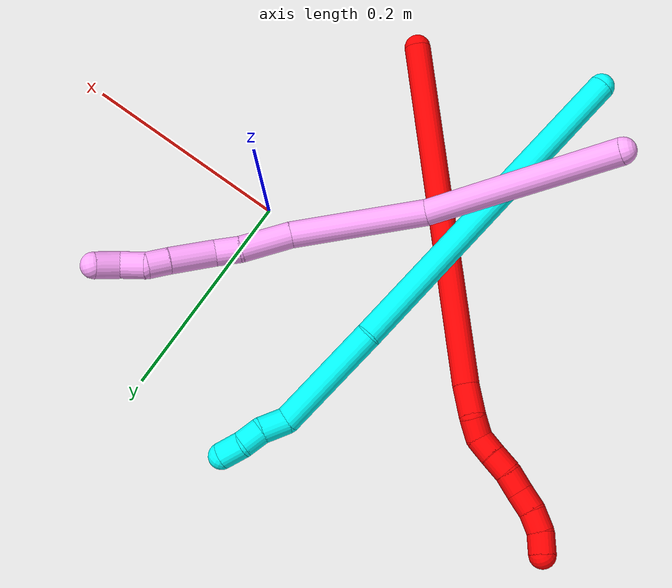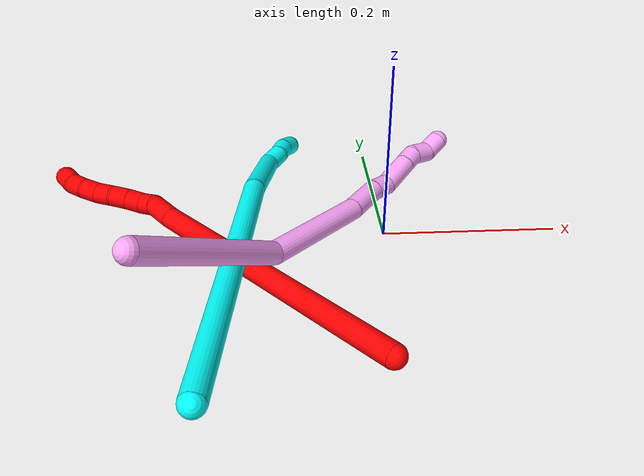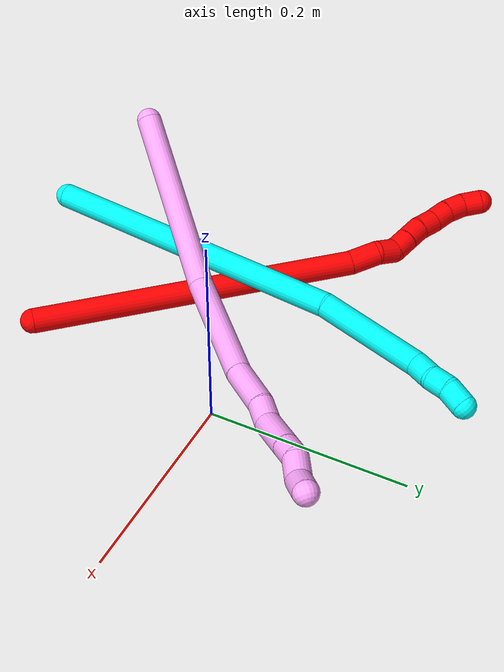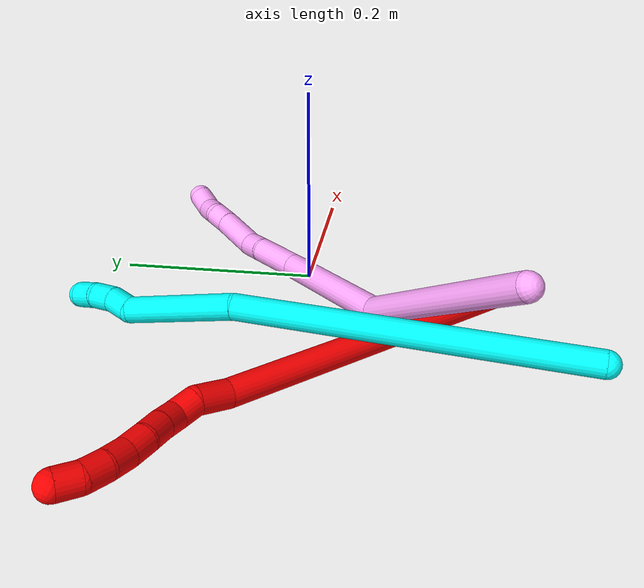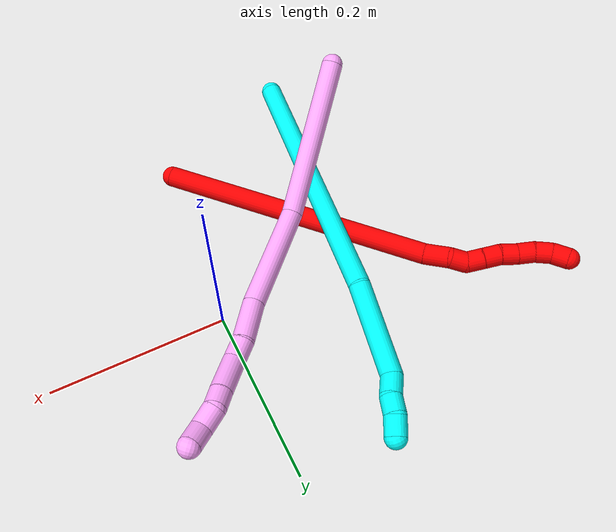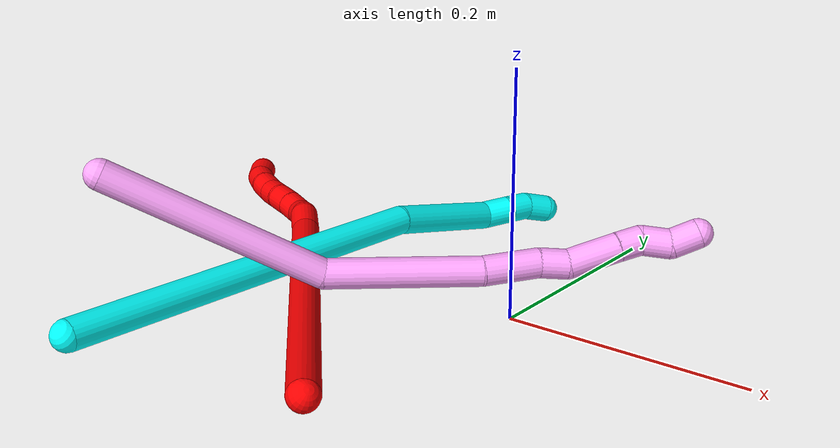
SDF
<sdf version="1.7">
 <world name="default">
  <model name="2">
   <static>0</static>
   <link name="2">
    <collision name="collision-cylinder-e_1_1_4">
     <pose>-0.106096 0.058304 0.111728 -0.480962 -0.699748 0.178484</pose>
     <geometry><cylinder><radius>0.0125</radius><length>0.329477</length></cylinder></geometry>
     <surface>
      <friction><ode><mu>1.16</mu><mu2>1.16</mu2><slip1>0</slip1><slip2>0</slip2></ode></friction>
      <contact><ode><kp>1e+06</kp><kd>1</kd><max_vel>0</max_vel><min_depth>0.001</min_depth></ode></contact>
     </surface>
    </collision>
    <visual name="visual-cylinder-e_1_1_4">
     <pose>-0.106096 0.058304 0.111728 -0.480962 -0.699748 0.178484</pose>
     <geometry><cylinder><radius>0.0125</radius><length>0.329477</length></cylinder></geometry>
     <material><ambient>1 0 0 1</ambient></material>
    </visual>
    <collision name="collision-cylinder-e_2_4_5">
     <pose>-0.222048 0.124233 0.231872 -0.736162 -0.714769 0.286057</pose>
     <geometry><cylinder><radius>0.0125</radius><length>0.030076</length></cylinder></geometry>
     <surface>
      <friction><ode><mu>1.16</mu><mu2>1.16</mu2><slip1>0</slip1><slip2>0</slip2></ode></friction>
      <contact><ode><kp>1e+06</kp><kd>1</kd><max_vel>0</max_vel><min_depth>0.001</min_depth></ode></contact>
     </surface>
    </collision>
    <visual name="visual-cylinder-e_2_4_5">
     <pose>-0.222048 0.124233 0.231872 -0.736162 -0.714769 0.286057</pose>
     <geometry><cylinder><radius>0.0125</radius><length>0.030076</length></cylinder></geometry>
     <material><ambient>1 0 0 1</ambient></material>
    </visual>
    <collision name="collision-cylinder-e_3_5_6">
     <pose>-0.236366 0.134947 0.248896 -0.344458 -0.453863 0.080291</pose>
     <geometry><cylinder><radius>0.0125</radius><length>0.020349</length></cylinder></geometry>
     <surface>
      <friction><ode><mu>1.16</mu><mu2>1.16</mu2><slip1>0</slip1><slip2>0</slip2></ode></friction>
      <contact><ode><kp>1e+06</kp><kd>1</kd><max_vel>0</max_vel><min_depth>0.001</min_depth></ode></contact>
     </surface>
    </collision>
    <visual name="visual-cylinder-e_3_5_6">
     <pose>-0.236366 0.134947 0.248896 -0.344458 -0.453863 0.080291</pose>
     <geometry><cylinder><radius>0.0125</radius><length>0.020349</length></cylinder></geometry>
     <material><ambient>1 0 0 1</ambient></material>
    </visual>
    <collision name="collision-cylinder-e_4_6_7">
     <pose>-0.243364 0.145363 0.263833 -0.858365 -0.256271 0.117787</pose>
     <geometry><cylinder><radius>0.0125</radius><length>0.020021</length></cylinder></geometry>
     <surface>
      <friction><ode><mu>1.16</mu><mu2>1.16</mu2><slip1>0</slip1><slip2>0</slip2></ode></friction>
      <contact><ode><kp>1e+06</kp><kd>1</kd><max_vel>0</max_vel><min_depth>0.001</min_depth></ode></contact>
     </surface>
    </collision>
    <visual name="visual-cylinder-e_4_6_7">
     <pose>-0.243364 0.145363 0.263833 -0.858365 -0.256271 0.117787</pose>
     <geometry><cylinder><radius>0.0125</radius><length>0.020021</length></cylinder></geometry>
     <material><ambient>1 0 0 1</ambient></material>
    </visual>
    <collision name="collision-cylinder-e_5_7_8">
     <pose>-0.247934 0.159846 0.276884 -0.816632 -0.204169 0.08858</pose>
     <geometry><cylinder><radius>0.0125</radius><length>0.020049</length></cylinder></geometry>
     <surface>
      <friction><ode><mu>1.16</mu><mu2>1.16</mu2><slip1>0</slip1><slip2>0</slip2></ode></friction>
      <contact><ode><kp>1e+06</kp><kd>1</kd><max_vel>0</max_vel><min_depth>0.001</min_depth></ode></contact>
     </surface>
    </collision>
    <visual name="visual-cylinder-e_5_7_8">
     <pose>-0.247934 0.159846 0.276884 -0.816632 -0.204169 0.08858</pose>
     <geometry><cylinder><radius>0.0125</radius><length>0.020049</length></cylinder></geometry>
     <material><ambient>1 0 0 1</ambient></material>
    </visual>
    <collision name="collision-cylinder-e_6_8_9">
     <pose>-0.253025 0.17264 0.291282 -0.633604 -0.310664 0.102586</pose>
     <geometry><cylinder><radius>0.0125</radius><length>0.02001</length></cylinder></geometry>
     <surface>
      <friction><ode><mu>1.16</mu><mu2>1.16</mu2><slip1>0</slip1><slip2>0</slip2></ode></friction>
      <contact><ode><kp>1e+06</kp><kd>1</kd><max_vel>0</max_vel><min_depth>0.001</min_depth></ode></contact>
     </surface>
    </collision>
    <visual name="visual-cylinder-e_6_8_9">
     <pose>-0.253025 0.17264 0.291282 -0.633604 -0.310664 0.102586</pose>
     <geometry><cylinder><radius>0.0125</radius><length>0.02001</length></cylinder></geometry>
     <material><ambient>1 0 0 1</ambient></material>
    </visual>
    <collision name="collision-cylinder-e_7_9_10">
     <pose>-0.259458 0.184968 0.305593 -0.789434 -0.344067 0.14451</pose>
     <geometry><cylinder><radius>0.0125</radius><length>0.020011</length></cylinder></geometry>
     <surface>
      <friction><ode><mu>1.16</mu><mu2>1.16</mu2><slip1>0</slip1><slip2>0</slip2></ode></friction>
      <contact><ode><kp>1e+06</kp><kd>1</kd><max_vel>0</max_vel><min_depth>0.001</min_depth></ode></contact>
     </surface>
    </collision>
    <visual name="visual-cylinder-e_7_9_10">
     <pose>-0.259458 0.184968 0.305593 -0.789434 -0.344067 0.14451</pose>
     <geometry><cylinder><radius>0.0125</radius><length>0.020011</length></cylinder></geometry>
     <material><ambient>1 0 0 1</ambient></material>
    </visual>
    <collision name="collision-cylinder-e_8_10_11">
     <pose>-0.267691 0.196965 0.319172 -0.652744 -0.507088 0.174965</pose>
     <geometry><cylinder><radius>0.0125</radius><length>0.020004</length></cylinder></geometry>
     <surface>
      <friction><ode><mu>1.16</mu><mu2>1.16</mu2><slip1>0</slip1><slip2>0</slip2></ode></friction>
      <contact><ode><kp>1e+06</kp><kd>1</kd><max_vel>0</max_vel><min_depth>0.001</min_depth></ode></contact>
     </surface>
    </collision>
    <visual name="visual-cylinder-e_8_10_11">
     <pose>-0.267691 0.196965 0.319172 -0.652744 -0.507088 0.174965</pose>
     <geometry><cylinder><radius>0.0125</radius><length>0.020004</length></cylinder></geometry>
     <material><ambient>1 0 0 1</ambient></material>
    </visual>
    <collision name="collision-cylinder-e_9_11_2">
     <pose>-0.279831 0.205835 0.331975 -0.546119 -0.815727 0.240848</pose>
     <geometry><cylinder><radius>0.0125</radius><length>0.020003</length></cylinder></geometry>
     <surface>
      <friction><ode><mu>1.16</mu><mu2>1.16</mu2><slip1>0</slip1><slip2>0</slip2></ode></friction>
      <contact><ode><kp>1e+06</kp><kd>1</kd><max_vel>0</max_vel><min_depth>0.001</min_depth></ode></contact>
     </surface>
    </collision>
    <visual name="visual-cylinder-e_9_11_2">
     <pose>-0.279831 0.205835 0.331975 -0.546119 -0.815727 0.240848</pose>
     <geometry><cylinder><radius>0.0125</radius><length>0.020003</length></cylinder></geometry>
     <material><ambient>1 0 0 1</ambient></material>
    </visual>
    <collision name="collision-sphere-2">
     <pose>-0.287115 0.209395 0.337833 0 -0 0</pose>
     <geometry><sphere><radius>0.0125</radius></sphere></geometry>
     <surface>
      <friction><ode><mu>1.16</mu><mu2>1.16</mu2><slip1>0</slip1><slip2>0</slip2></ode></friction>
      <contact><ode><kp>1e+06</kp><kd>1</kd><max_vel>0</max_vel><min_depth>0.001</min_depth></ode></contact>
     </surface>
    </collision>
    <visual name="visual-sphere-2">
     <pose>-0.287115 0.209395 0.337833 0 -0 0</pose>
     <geometry><sphere><radius>0.0125</radius></sphere></geometry>
     <material><ambient>1 0 0 1</ambient></material>
    </visual>
    <collision name="collision-sphere-11">
     <pose>-0.272548 0.202275 0.326118 0 -0 0</pose>
     <geometry><sphere><radius>0.0125</radius></sphere></geometry>
     <surface>
      <friction><ode><mu>1.16</mu><mu2>1.16</mu2><slip1>0</slip1><slip2>0</slip2></ode></friction>
      <contact><ode><kp>1e+06</kp><kd>1</kd><max_vel>0</max_vel><min_depth>0.001</min_depth></ode></contact>
     </surface>
    </collision>
    <visual name="visual-sphere-11">
     <pose>-0.272548 0.202275 0.326118 0 -0 0</pose>
     <geometry><sphere><radius>0.0125</radius></sphere></geometry>
     <material><ambient>1 0 0 1</ambient></material>
    </visual>
    <collision name="collision-sphere-10">
     <pose>-0.262833 0.191655 0.312226 0 -0 0</pose>
     <geometry><sphere><radius>0.0125</radius></sphere></geometry>
     <surface>
      <friction><ode><mu>1.16</mu><mu2>1.16</mu2><slip1>0</slip1><slip2>0</slip2></ode></friction>
      <contact><ode><kp>1e+06</kp><kd>1</kd><max_vel>0</max_vel><min_depth>0.001</min_depth></ode></contact>
     </surface>
    </collision>
    <visual name="visual-sphere-10">
     <pose>-0.262833 0.191655 0.312226 0 -0 0</pose>
     <geometry><sphere><radius>0.0125</radius></sphere></geometry>
     <material><ambient>1 0 0 1</ambient></material>
    </visual>
    <collision name="collision-sphere-9">
     <pose>-0.256083 0.17828 0.29896 0 -0 0</pose>
     <geometry><sphere><radius>0.0125</radius></sphere></geometry>
     <surface>
      <friction><ode><mu>1.16</mu><mu2>1.16</mu2><slip1>0</slip1><slip2>0</slip2></ode></friction>
      <contact><ode><kp>1e+06</kp><kd>1</kd><max_vel>0</max_vel><min_depth>0.001</min_depth></ode></contact>
     </surface>
    </collision>
    <visual name="visual-sphere-9">
     <pose>-0.256083 0.17828 0.29896 0 -0 0</pose>
     <geometry><sphere><radius>0.0125</radius></sphere></geometry>
     <material><ambient>1 0 0 1</ambient></material>
    </visual>
    <collision name="collision-sphere-4">
     <pose>-0.212191 0.116607 0.223456 0 -0 0</pose>
     <geometry><sphere><radius>0.0125</radius></sphere></geometry>
     <surface>
      <friction><ode><mu>1.16</mu><mu2>1.16</mu2><slip1>0</slip1><slip2>0</slip2></ode></friction>
      <contact><ode><kp>1e+06</kp><kd>1</kd><max_vel>0</max_vel><min_depth>0.001</min_depth></ode></contact>
     </surface>
    </collision>
    <visual name="visual-sphere-4">
     <pose>-0.212191 0.116607 0.223456 0 -0 0</pose>
     <geometry><sphere><radius>0.0125</radius></sphere></geometry>
     <material><ambient>1 0 0 1</ambient></material>
    </visual>
    <collision name="collision-sphere-1">
     <geometry><sphere><radius>0.0125</radius></sphere></geometry>
     <surface>
      <friction><ode><mu>1.16</mu><mu2>1.16</mu2><slip1>0</slip1><slip2>0</slip2></ode></friction>
      <contact><ode><kp>1e+06</kp><kd>1</kd><max_vel>0</max_vel><min_depth>0.001</min_depth></ode></contact>
     </surface>
    </collision>
    <visual name="visual-sphere-1">
     <geometry><sphere><radius>0.0125</radius></sphere></geometry>
     <material><ambient>1 0 0 1</ambient></material>
    </visual>
    <collision name="collision-sphere-8">
     <pose>-0.249966 0.167 0.283605 0 -0 0</pose>
     <geometry><sphere><radius>0.0125</radius></sphere></geometry>
     <surface>
      <friction><ode><mu>1.16</mu><mu2>1.16</mu2><slip1>0</slip1><slip2>0</slip2></ode></friction>
      <contact><ode><kp>1e+06</kp><kd>1</kd><max_vel>0</max_vel><min_depth>0.001</min_depth></ode></contact>
     </surface>
    </collision>
    <visual name="visual-sphere-8">
     <pose>-0.249966 0.167 0.283605 0 -0 0</pose>
     <geometry><sphere><radius>0.0125</radius></sphere></geometry>
     <material><ambient>1 0 0 1</ambient></material>
    </visual>
    <collision name="collision-sphere-5">
     <pose>-0.231905 0.131859 0.240289 0 -0 0</pose>
     <geometry><sphere><radius>0.0125</radius></sphere></geometry>
     <surface>
      <friction><ode><mu>1.16</mu><mu2>1.16</mu2><slip1>0</slip1><slip2>0</slip2></ode></friction>
      <contact><ode><kp>1e+06</kp><kd>1</kd><max_vel>0</max_vel><min_depth>0.001</min_depth></ode></contact>
     </surface>
    </collision>
    <visual name="visual-sphere-5">
     <pose>-0.231905 0.131859 0.240289 0 -0 0</pose>
     <geometry><sphere><radius>0.0125</radius></sphere></geometry>
     <material><ambient>1 0 0 1</ambient></material>
    </visual>
    <collision name="collision-sphere-6">
     <pose>-0.240827 0.138035 0.257503 0 -0 0</pose>
     <geometry><sphere><radius>0.0125</radius></sphere></geometry>
     <surface>
      <friction><ode><mu>1.16</mu><mu2>1.16</mu2><slip1>0</slip1><slip2>0</slip2></ode></friction>
      <contact><ode><kp>1e+06</kp><kd>1</kd><max_vel>0</max_vel><min_depth>0.001</min_depth></ode></contact>
     </surface>
    </collision>
    <visual name="visual-sphere-6">
     <pose>-0.240827 0.138035 0.257503 0 -0 0</pose>
     <geometry><sphere><radius>0.0125</radius></sphere></geometry>
     <material><ambient>1 0 0 1</ambient></material>
    </visual>
    <collision name="collision-sphere-7">
     <pose>-0.245901 0.152691 0.270163 0 -0 0</pose>
     <geometry><sphere><radius>0.0125</radius></sphere></geometry>
     <surface>
      <friction><ode><mu>1.16</mu><mu2>1.16</mu2><slip1>0</slip1><slip2>0</slip2></ode></friction>
      <contact><ode><kp>1e+06</kp><kd>1</kd><max_vel>0</max_vel><min_depth>0.001</min_depth></ode></contact>
     </surface>
    </collision>
    <visual name="visual-sphere-7">
     <pose>-0.245901 0.152691 0.270163 0 -0 0</pose>
     <geometry><sphere><radius>0.0125</radius></sphere></geometry>
     <material><ambient>1 0 0 1</ambient></material>
    </visual>
    <inertial>
     <pose>-0.15499 0.094041 0.169306 0 -0 0</pose>
     <mass>0.5</mass>
     <inertia>
      <ixx>0.002651</ixx>
      <ixy>0</ixy>
      <ixz>0</ixz>
      <iyy>0.003206</iyy>
      <iyz>0</iyz>
      <izz>0.000894</izz>
     </inertia>
    </inertial>
   </link>
   <pose>-0.022433 -0.212482 0.011498 2.32735 0.312604 -1.65216</pose>
  </model>
  <model name="3">
   <static>0</static>
   <link name="3">
    <collision name="collision-cylinder-e_1_1_4">
     <pose>0.027266 0.113089 -0.112978 -2.3557 0.168945 -0.403013</pose>
     <geometry><cylinder><radius>0.0125</radius><length>0.324324</length></cylinder></geometry>
     <surface>
      <friction><ode><mu>1.16</mu><mu2>1.16</mu2><slip1>0</slip1><slip2>0</slip2></ode></friction>
      <contact><ode><kp>1e+06</kp><kd>1</kd><max_vel>0</max_vel><min_depth>0.001</min_depth></ode></contact>
     </surface>
    </collision>
    <visual name="visual-cylinder-e_1_1_4">
     <pose>0.027266 0.113089 -0.112978 -2.3557 0.168945 -0.403013</pose>
     <geometry><cylinder><radius>0.0125</radius><length>0.324324</length></cylinder></geometry>
     <material><ambient>0.003922 1 0.996078 1</ambient></material>
    </visual>
    <collision name="collision-cylinder-e_2_4_5">
     <pose>0.065338 0.254726 -0.270189 -2.56844 0.202434 -0.663805</pose>
     <geometry><cylinder><radius>0.0125</radius><length>0.107486</length></cylinder></geometry>
     <surface>
      <friction><ode><mu>1.16</mu><mu2>1.16</mu2><slip1>0</slip1><slip2>0</slip2></ode></friction>
      <contact><ode><kp>1e+06</kp><kd>1</kd><max_vel>0</max_vel><min_depth>0.001</min_depth></ode></contact>
     </surface>
    </collision>
    <visual name="visual-cylinder-e_2_4_5">
     <pose>0.065338 0.254726 -0.270189 -2.56844 0.202434 -0.663805</pose>
     <geometry><cylinder><radius>0.0125</radius><length>0.107486</length></cylinder></geometry>
     <material><ambient>0.003922 1 0.996078 1</ambient></material>
    </visual>
    <collision name="collision-cylinder-e_3_5_6">
     <pose>0.083177 0.291511 -0.320659 -2.21902 0.597701 -1.10971</pose>
     <geometry><cylinder><radius>0.0125</radius><length>0.024997</length></cylinder></geometry>
     <surface>
      <friction><ode><mu>1.16</mu><mu2>1.16</mu2><slip1>0</slip1><slip2>0</slip2></ode></friction>
      <contact><ode><kp>1e+06</kp><kd>1</kd><max_vel>0</max_vel><min_depth>0.001</min_depth></ode></contact>
     </surface>
    </collision>
    <visual name="visual-cylinder-e_3_5_6">
     <pose>0.083177 0.291511 -0.320659 -2.21902 0.597701 -1.10971</pose>
     <geometry><cylinder><radius>0.0125</radius><length>0.024997</length></cylinder></geometry>
     <material><ambient>0.003922 1 0.996078 1</ambient></material>
    </visual>
    <collision name="collision-cylinder-e_4_6_7">
     <pose>0.093706 0.306474 -0.333925 -2.37806 0.344957 -0.818834</pose>
     <geometry><cylinder><radius>0.0125</radius><length>0.020675</length></cylinder></geometry>
     <surface>
      <friction><ode><mu>1.16</mu><mu2>1.16</mu2><slip1>0</slip1><slip2>0</slip2></ode></friction>
      <contact><ode><kp>1e+06</kp><kd>1</kd><max_vel>0</max_vel><min_depth>0.001</min_depth></ode></contact>
     </surface>
    </collision>
    <visual name="visual-cylinder-e_4_6_7">
     <pose>0.093706 0.306474 -0.333925 -2.37806 0.344957 -0.818834</pose>
     <geometry><cylinder><radius>0.0125</radius><length>0.020675</length></cylinder></geometry>
     <material><ambient>0.003922 1 0.996078 1</ambient></material>
    </visual>
    <collision name="collision-cylinder-e_5_7_2">
     <pose>0.102662 0.317897 -0.349607 -2.64438 0.506383 -1.58987</pose>
     <geometry><cylinder><radius>0.0125</radius><length>0.022518</length></cylinder></geometry>
     <surface>
      <friction><ode><mu>1.16</mu><mu2>1.16</mu2><slip1>0</slip1><slip2>0</slip2></ode></friction>
      <contact><ode><kp>1e+06</kp><kd>1</kd><max_vel>0</max_vel><min_depth>0.001</min_depth></ode></contact>
     </surface>
    </collision>
    <visual name="visual-cylinder-e_5_7_2">
     <pose>0.102662 0.317897 -0.349607 -2.64438 0.506383 -1.58987</pose>
     <geometry><cylinder><radius>0.0125</radius><length>0.022518</length></cylinder></geometry>
     <material><ambient>0.003922 1 0.996078 1</ambient></material>
    </visual>
    <collision name="collision-sphere-2">
     <pose>0.108123 0.322593 -0.358261 0 -0 0</pose>
     <geometry><sphere><radius>0.0125</radius></sphere></geometry>
     <surface>
      <friction><ode><mu>1.16</mu><mu2>1.16</mu2><slip1>0</slip1><slip2>0</slip2></ode></friction>
      <contact><ode><kp>1e+06</kp><kd>1</kd><max_vel>0</max_vel><min_depth>0.001</min_depth></ode></contact>
     </surface>
    </collision>
    <visual name="visual-sphere-2">
     <pose>0.108123 0.322593 -0.358261 0 -0 0</pose>
     <geometry><sphere><radius>0.0125</radius></sphere></geometry>
     <material><ambient>0.003922 1 0.996078 1</ambient></material>
    </visual>
    <collision name="collision-sphere-7">
     <pose>0.097201 0.313201 -0.340953 0 -0 0</pose>
     <geometry><sphere><radius>0.0125</radius></sphere></geometry>
     <surface>
      <friction><ode><mu>1.16</mu><mu2>1.16</mu2><slip1>0</slip1><slip2>0</slip2></ode></friction>
      <contact><ode><kp>1e+06</kp><kd>1</kd><max_vel>0</max_vel><min_depth>0.001</min_depth></ode></contact>
     </surface>
    </collision>
    <visual name="visual-sphere-7">
     <pose>0.097201 0.313201 -0.340953 0 -0 0</pose>
     <geometry><sphere><radius>0.0125</radius></sphere></geometry>
     <material><ambient>0.003922 1 0.996078 1</ambient></material>
    </visual>
    <collision name="collision-sphere-6">
     <pose>0.09021 0.299747 -0.326897 0 -0 0</pose>
     <geometry><sphere><radius>0.0125</radius></sphere></geometry>
     <surface>
      <friction><ode><mu>1.16</mu><mu2>1.16</mu2><slip1>0</slip1><slip2>0</slip2></ode></friction>
      <contact><ode><kp>1e+06</kp><kd>1</kd><max_vel>0</max_vel><min_depth>0.001</min_depth></ode></contact>
     </surface>
    </collision>
    <visual name="visual-sphere-6">
     <pose>0.09021 0.299747 -0.326897 0 -0 0</pose>
     <geometry><sphere><radius>0.0125</radius></sphere></geometry>
     <material><ambient>0.003922 1 0.996078 1</ambient></material>
    </visual>
    <collision name="collision-sphere-5">
     <pose>0.076143 0.283274 -0.314421 0 -0 0</pose>
     <geometry><sphere><radius>0.0125</radius></sphere></geometry>
     <surface>
      <friction><ode><mu>1.16</mu><mu2>1.16</mu2><slip1>0</slip1><slip2>0</slip2></ode></friction>
      <contact><ode><kp>1e+06</kp><kd>1</kd><max_vel>0</max_vel><min_depth>0.001</min_depth></ode></contact>
     </surface>
    </collision>
    <visual name="visual-sphere-5">
     <pose>0.076143 0.283274 -0.314421 0 -0 0</pose>
     <geometry><sphere><radius>0.0125</radius></sphere></geometry>
     <material><ambient>0.003922 1 0.996078 1</ambient></material>
    </visual>
    <collision name="collision-sphere-1">
     <geometry><sphere><radius>0.0125</radius></sphere></geometry>
     <surface>
      <friction><ode><mu>1.16</mu><mu2>1.16</mu2><slip1>0</slip1><slip2>0</slip2></ode></friction>
      <contact><ode><kp>1e+06</kp><kd>1</kd><max_vel>0</max_vel><min_depth>0.001</min_depth></ode></contact>
     </surface>
    </collision>
    <visual name="visual-sphere-1">
     <geometry><sphere><radius>0.0125</radius></sphere></geometry>
     <material><ambient>0.003922 1 0.996078 1</ambient></material>
    </visual>
    <collision name="collision-sphere-4">
     <pose>0.054532 0.226177 -0.225956 0 -0 0</pose>
     <geometry><sphere><radius>0.0125</radius></sphere></geometry>
     <surface>
      <friction><ode><mu>1.16</mu><mu2>1.16</mu2><slip1>0</slip1><slip2>0</slip2></ode></friction>
      <contact><ode><kp>1e+06</kp><kd>1</kd><max_vel>0</max_vel><min_depth>0.001</min_depth></ode></contact>
     </surface>
    </collision>
    <visual name="visual-sphere-4">
     <pose>0.054532 0.226177 -0.225956 0 -0 0</pose>
     <geometry><sphere><radius>0.0125</radius></sphere></geometry>
     <material><ambient>0.003922 1 0.996078 1</ambient></material>
    </visual>
    <inertial>
     <pose>0.044389 0.169677 -0.17695 0 -0 0</pose>
     <mass>0.5</mass>
     <inertia>
      <ixx>0.001509</ixx>
      <ixy>0</ixy>
      <ixz>0</ixz>
      <iyy>-0.002935</iyy>
      <iyz>0</iyz>
      <izz>-0.002584</izz>
     </inertia>
    </inertial>
   </link>
   <pose>-0.189028 -0.274714 0.03049 0.815892 0.043517 0.043688</pose>
  </model>
  <model name="4">
   <static>0</static>
   <link name="4">
    <collision name="collision-cylinder-e_1_1_4">
     <pose>-0.002056 -0.002066 -0.09374 3.11956 -0.021921 -1.56559</pose>
     <geometry><cylinder><radius>0.0125</radius><length>0.18757</length></cylinder></geometry>
     <surface>
      <friction><ode><mu>1.16</mu><mu2>1.16</mu2><slip1>0</slip1><slip2>0</slip2></ode></friction>
      <contact><ode><kp>1e+06</kp><kd>1</kd><max_vel>0</max_vel><min_depth>0.001</min_depth></ode></contact>
     </surface>
    </collision>
    <visual name="visual-cylinder-e_1_1_4">
     <pose>-0.002056 -0.002066 -0.09374 3.11956 -0.021921 -1.56559</pose>
     <geometry><cylinder><radius>0.0125</radius><length>0.18757</length></cylinder></geometry>
     <material><ambient>1 0.65098 0.996078 1</ambient></material>
    </visual>
    <collision name="collision-cylinder-e_2_4_5">
     <pose>0.00704 0.020511 -0.24532 -2.73883 0.175539 -0.813937</pose>
     <geometry><cylinder><radius>0.0125</radius><length>0.127705</length></cylinder></geometry>
     <surface>
      <friction><ode><mu>1.16</mu><mu2>1.16</mu2><slip1>0</slip1><slip2>0</slip2></ode></friction>
      <contact><ode><kp>1e+06</kp><kd>1</kd><max_vel>0</max_vel><min_depth>0.001</min_depth></ode></contact>
     </surface>
    </collision>
    <visual name="visual-cylinder-e_2_4_5">
     <pose>0.00704 0.020511 -0.24532 -2.73883 0.175539 -0.813937</pose>
     <geometry><cylinder><radius>0.0125</radius><length>0.127705</length></cylinder></geometry>
     <material><ambient>1 0.65098 0.996078 1</ambient></material>
    </visual>
    <collision name="collision-cylinder-e_3_5_6">
     <pose>0.019949 0.057177 -0.323777 -2.61368 0.07355 -0.2706</pose>
     <geometry><cylinder><radius>0.0125</radius><length>0.047862</length></cylinder></geometry>
     <surface>
      <friction><ode><mu>1.16</mu><mu2>1.16</mu2><slip1>0</slip1><slip2>0</slip2></ode></friction>
      <contact><ode><kp>1e+06</kp><kd>1</kd><max_vel>0</max_vel><min_depth>0.001</min_depth></ode></contact>
     </surface>
    </collision>
    <visual name="visual-cylinder-e_3_5_6">
     <pose>0.019949 0.057177 -0.323777 -2.61368 0.07355 -0.2706</pose>
     <geometry><cylinder><radius>0.0125</radius><length>0.047862</length></cylinder></geometry>
     <material><ambient>1 0.65098 0.996078 1</ambient></material>
    </visual>
    <collision name="collision-cylinder-e_4_6_7">
     <pose>0.02399 0.073139 -0.355501 -2.8007 0.191243 -1.01681</pose>
     <geometry><cylinder><radius>0.0125</radius><length>0.024008</length></cylinder></geometry>
     <surface>
      <friction><ode><mu>1.16</mu><mu2>1.16</mu2><slip1>0</slip1><slip2>0</slip2></ode></friction>
      <contact><ode><kp>1e+06</kp><kd>1</kd><max_vel>0</max_vel><min_depth>0.001</min_depth></ode></contact>
     </surface>
    </collision>
    <visual name="visual-cylinder-e_4_6_7">
     <pose>0.02399 0.073139 -0.355501 -2.8007 0.191243 -1.01681</pose>
     <geometry><cylinder><radius>0.0125</radius><length>0.024008</length></cylinder></geometry>
     <material><ambient>1 0.65098 0.996078 1</ambient></material>
    </visual>
    <collision name="collision-cylinder-e_5_7_8">
     <pose>0.030619 0.0912 -0.382848 -2.42591 0.199361 -0.522676</pose>
     <geometry><cylinder><radius>0.0125</radius><length>0.04391</length></cylinder></geometry>
     <surface>
      <friction><ode><mu>1.16</mu><mu2>1.16</mu2><slip1>0</slip1><slip2>0</slip2></ode></friction>
      <contact><ode><kp>1e+06</kp><kd>1</kd><max_vel>0</max_vel><min_depth>0.001</min_depth></ode></contact>
     </surface>
    </collision>
    <visual name="visual-cylinder-e_5_7_8">
     <pose>0.030619 0.0912 -0.382848 -2.42591 0.199361 -0.522676</pose>
     <geometry><cylinder><radius>0.0125</radius><length>0.04391</length></cylinder></geometry>
     <material><ambient>1 0.65098 0.996078 1</ambient></material>
    </visual>
    <collision name="collision-cylinder-e_6_8_9">
     <pose>0.036604 0.111643 -0.40686 -2.4586 0.161884 -0.448782</pose>
     <geometry><cylinder><radius>0.0125</radius><length>0.020303</length></cylinder></geometry>
     <surface>
      <friction><ode><mu>1.16</mu><mu2>1.16</mu2><slip1>0</slip1><slip2>0</slip2></ode></friction>
      <contact><ode><kp>1e+06</kp><kd>1</kd><max_vel>0</max_vel><min_depth>0.001</min_depth></ode></contact>
     </surface>
    </collision>
    <visual name="visual-cylinder-e_6_8_9">
     <pose>0.036604 0.111643 -0.40686 -2.4586 0.161884 -0.448782</pose>
     <geometry><cylinder><radius>0.0125</radius><length>0.020303</length></cylinder></geometry>
     <material><ambient>1 0.65098 0.996078 1</ambient></material>
    </visual>
    <collision name="collision-cylinder-e_7_9_10">
     <pose>0.042327 0.120832 -0.425837 -2.89119 0.339669 -1.8753</pose>
     <geometry><cylinder><radius>0.0125</radius><length>0.024535</length></cylinder></geometry>
     <surface>
      <friction><ode><mu>1.16</mu><mu2>1.16</mu2><slip1>0</slip1><slip2>0</slip2></ode></friction>
      <contact><ode><kp>1e+06</kp><kd>1</kd><max_vel>0</max_vel><min_depth>0.001</min_depth></ode></contact>
     </surface>
    </collision>
    <visual name="visual-cylinder-e_7_9_10">
     <pose>0.042327 0.120832 -0.425837 -2.89119 0.339669 -1.8753</pose>
     <geometry><cylinder><radius>0.0125</radius><length>0.024535</length></cylinder></geometry>
     <material><ambient>1 0.65098 0.996078 1</ambient></material>
    </visual>
    <collision name="collision-cylinder-e_8_10_2">
     <pose>0.050598 0.131693 -0.445035 -2.35599 0.354491 -0.816112</pose>
     <geometry><cylinder><radius>0.0125</radius><length>0.024107</length></cylinder></geometry>
     <surface>
      <friction><ode><mu>1.16</mu><mu2>1.16</mu2><slip1>0</slip1><slip2>0</slip2></ode></friction>
      <contact><ode><kp>1e+06</kp><kd>1</kd><max_vel>0</max_vel><min_depth>0.001</min_depth></ode></contact>
     </surface>
    </collision>
    <visual name="visual-cylinder-e_8_10_2">
     <pose>0.050598 0.131693 -0.445035 -2.35599 0.354491 -0.816112</pose>
     <geometry><cylinder><radius>0.0125</radius><length>0.024107</length></cylinder></geometry>
     <material><ambient>1 0.65098 0.996078 1</ambient></material>
    </visual>
    <collision name="collision-sphere-2">
     <pose>0.054782 0.139688 -0.453026 0 -0 0</pose>
     <geometry><sphere><radius>0.0125</radius></sphere></geometry>
     <surface>
      <friction><ode><mu>1.16</mu><mu2>1.16</mu2><slip1>0</slip1><slip2>0</slip2></ode></friction>
      <contact><ode><kp>1e+06</kp><kd>1</kd><max_vel>0</max_vel><min_depth>0.001</min_depth></ode></contact>
     </surface>
    </collision>
    <visual name="visual-sphere-2">
     <pose>0.054782 0.139688 -0.453026 0 -0 0</pose>
     <geometry><sphere><radius>0.0125</radius></sphere></geometry>
     <material><ambient>1 0.65098 0.996078 1</ambient></material>
    </visual>
    <collision name="collision-sphere-10">
     <pose>0.046414 0.123698 -0.437043 0 -0 0</pose>
     <geometry><sphere><radius>0.0125</radius></sphere></geometry>
     <surface>
      <friction><ode><mu>1.16</mu><mu2>1.16</mu2><slip1>0</slip1><slip2>0</slip2></ode></friction>
      <contact><ode><kp>1e+06</kp><kd>1</kd><max_vel>0</max_vel><min_depth>0.001</min_depth></ode></contact>
     </surface>
    </collision>
    <visual name="visual-sphere-10">
     <pose>0.046414 0.123698 -0.437043 0 -0 0</pose>
     <geometry><sphere><radius>0.0125</radius></sphere></geometry>
     <material><ambient>1 0.65098 0.996078 1</ambient></material>
    </visual>
    <collision name="collision-sphere-9">
     <pose>0.03824 0.117966 -0.414631 0 -0 0</pose>
     <geometry><sphere><radius>0.0125</radius></sphere></geometry>
     <surface>
      <friction><ode><mu>1.16</mu><mu2>1.16</mu2><slip1>0</slip1><slip2>0</slip2></ode></friction>
      <contact><ode><kp>1e+06</kp><kd>1</kd><max_vel>0</max_vel><min_depth>0.001</min_depth></ode></contact>
     </surface>
    </collision>
    <visual name="visual-sphere-9">
     <pose>0.03824 0.117966 -0.414631 0 -0 0</pose>
     <geometry><sphere><radius>0.0125</radius></sphere></geometry>
     <material><ambient>1 0.65098 0.996078 1</ambient></material>
    </visual>
    <collision name="collision-sphere-4">
     <pose>-0.004111 -0.004132 -0.187479 0 -0 0</pose>
     <geometry><sphere><radius>0.0125</radius></sphere></geometry>
     <surface>
      <friction><ode><mu>1.16</mu><mu2>1.16</mu2><slip1>0</slip1><slip2>0</slip2></ode></friction>
      <contact><ode><kp>1e+06</kp><kd>1</kd><max_vel>0</max_vel><min_depth>0.001</min_depth></ode></contact>
     </surface>
    </collision>
    <visual name="visual-sphere-4">
     <pose>-0.004111 -0.004132 -0.187479 0 -0 0</pose>
     <geometry><sphere><radius>0.0125</radius></sphere></geometry>
     <material><ambient>1 0.65098 0.996078 1</ambient></material>
    </visual>
    <collision name="collision-sphere-1">
     <geometry><sphere><radius>0.0125</radius></sphere></geometry>
     <surface>
      <friction><ode><mu>1.16</mu><mu2>1.16</mu2><slip1>0</slip1><slip2>0</slip2></ode></friction>
      <contact><ode><kp>1e+06</kp><kd>1</kd><max_vel>0</max_vel><min_depth>0.001</min_depth></ode></contact>
     </surface>
    </collision>
    <visual name="visual-sphere-1">
     <geometry><sphere><radius>0.0125</radius></sphere></geometry>
     <material><ambient>1 0.65098 0.996078 1</ambient></material>
    </visual>
    <collision name="collision-sphere-8">
     <pose>0.034967 0.10532 -0.399089 0 -0 0</pose>
     <geometry><sphere><radius>0.0125</radius></sphere></geometry>
     <surface>
      <friction><ode><mu>1.16</mu><mu2>1.16</mu2><slip1>0</slip1><slip2>0</slip2></ode></friction>
      <contact><ode><kp>1e+06</kp><kd>1</kd><max_vel>0</max_vel><min_depth>0.001</min_depth></ode></contact>
     </surface>
    </collision>
    <visual name="visual-sphere-8">
     <pose>0.034967 0.10532 -0.399089 0 -0 0</pose>
     <geometry><sphere><radius>0.0125</radius></sphere></geometry>
     <material><ambient>1 0.65098 0.996078 1</ambient></material>
    </visual>
    <collision name="collision-sphere-5">
     <pose>0.018191 0.045155 -0.30316 0 -0 0</pose>
     <geometry><sphere><radius>0.0125</radius></sphere></geometry>
     <surface>
      <friction><ode><mu>1.16</mu><mu2>1.16</mu2><slip1>0</slip1><slip2>0</slip2></ode></friction>
      <contact><ode><kp>1e+06</kp><kd>1</kd><max_vel>0</max_vel><min_depth>0.001</min_depth></ode></contact>
     </surface>
    </collision>
    <visual name="visual-sphere-5">
     <pose>0.018191 0.045155 -0.30316 0 -0 0</pose>
     <geometry><sphere><radius>0.0125</radius></sphere></geometry>
     <material><ambient>1 0.65098 0.996078 1</ambient></material>
    </visual>
    <collision name="collision-sphere-6">
     <pose>0.021708 0.069199 -0.344394 0 -0 0</pose>
     <geometry><sphere><radius>0.0125</radius></sphere></geometry>
     <surface>
      <friction><ode><mu>1.16</mu><mu2>1.16</mu2><slip1>0</slip1><slip2>0</slip2></ode></friction>
      <contact><ode><kp>1e+06</kp><kd>1</kd><max_vel>0</max_vel><min_depth>0.001</min_depth></ode></contact>
     </surface>
    </collision>
    <visual name="visual-sphere-6">
     <pose>0.021708 0.069199 -0.344394 0 -0 0</pose>
     <geometry><sphere><radius>0.0125</radius></sphere></geometry>
     <material><ambient>1 0.65098 0.996078 1</ambient></material>
    </visual>
    <collision name="collision-sphere-7">
     <pose>0.026271 0.077079 -0.366608 0 -0 0</pose>
     <geometry><sphere><radius>0.0125</radius></sphere></geometry>
     <surface>
      <friction><ode><mu>1.16</mu><mu2>1.16</mu2><slip1>0</slip1><slip2>0</slip2></ode></friction>
      <contact><ode><kp>1e+06</kp><kd>1</kd><max_vel>0</max_vel><min_depth>0.001</min_depth></ode></contact>
     </surface>
    </collision>
    <visual name="visual-sphere-7">
     <pose>0.026271 0.077079 -0.366608 0 -0 0</pose>
     <geometry><sphere><radius>0.0125</radius></sphere></geometry>
     <material><ambient>1 0.65098 0.996078 1</ambient></material>
    </visual>
    <inertial>
     <pose>0.01278 0.03827 -0.238381 0 -0 0</pose>
     <mass>0.5</mass>
     <inertia>
      <ixx>-0.000549</ixx>
      <ixy>0</ixy>
      <ixz>0</ixz>
      <iyy>-0.00081</iyy>
      <iyz>0</iyz>
      <izz>-0.00013</izz>
     </inertia>
    </inertial>
   </link>
   <pose>-0.238494 -0.198962 0.120932 1.07321 -0.339214 -0.590281</pose>
  </model>
 </world>
</sdf>
